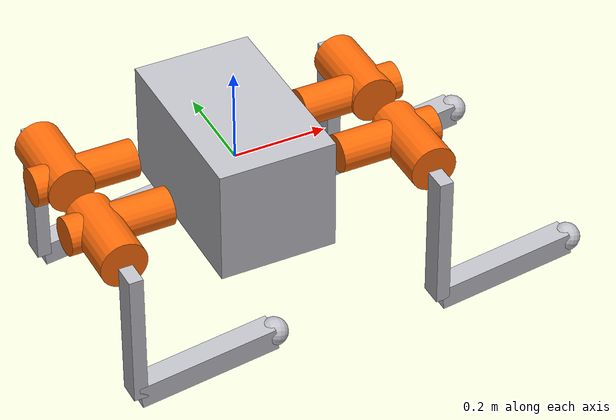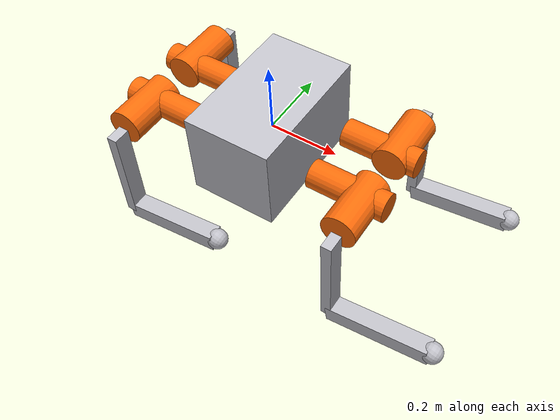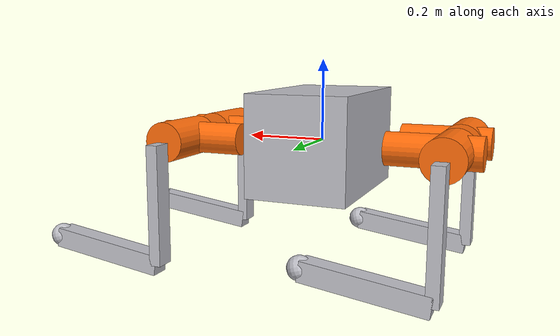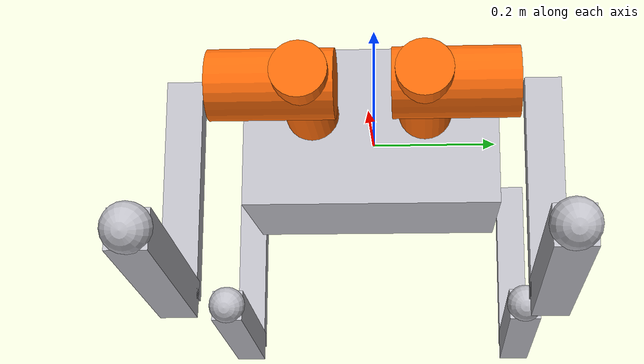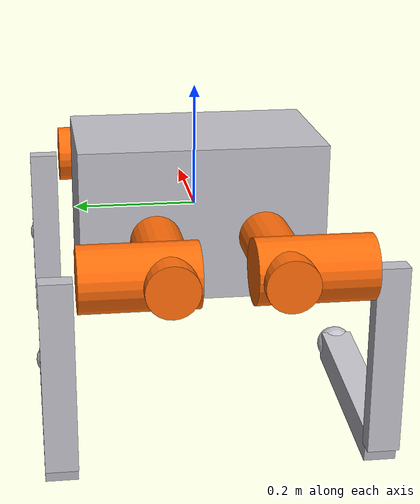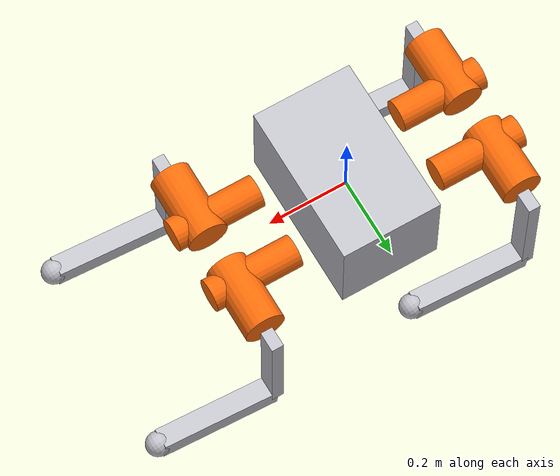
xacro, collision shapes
<?xml version="1.0"?>

<robot xmlns:xacro="http://www.ros.org/wiki/xacro" name="robot">

    <xacro:arg name="robot_type" default="alpha"/>
    <xacro:arg name="DEBUG" default="false"/>

    <xacro:include filename="$(find legged_hil_mirle_description)/urdf/common/materials.xacro"/>
    <xacro:include filename="$(find legged_hil_mirle_description)/urdf/common/leg.xacro"/>
    <xacro:include filename="$(find legged_hil_mirle_description)/urdf/common/gazebo.xacro"/>
    <xacro:include filename="$(find legged_hil_mirle_description)/urdf/common/imu.xacro"/>
    <xacro:include filename="$(find legged_hil_mirle_description)/urdf/$(arg robot_type)/const.xacro"/>

    <xacro:property name="mesh_path" value="package://legged_hil_mirle_description/meshes/$(arg robot_type)"/>

    <!-- Debug mode will hung up the robot, use "true" or "false" to switch it. -->
    <xacro:if value="$(arg DEBUG)">
        <link name="world"/>
        <joint name="base_static_joint" type="fixed" dont_collapse="true">
            <origin rpy="0 0 0" xyz="0 0 0"/>
            <parent link="world"/>
            <child link="base"/>
        </joint>
    </xacro:if>

    <link name="base">
        <visual>
            <origin rpy="0 0 0" xyz="0 0 0"/>
            <geometry>
                <mesh filename="${mesh_path}/trunk.stl" scale="1 1 1"/>
            </geometry>
            <material name="silver"/>
        </visual>
        <collision>
            <origin rpy="0 0 0" xyz="0 0 0"/>
            <geometry>
                <box size="${trunk_length} ${trunk_width} ${trunk_height}"/>
            </geometry>
        </collision>

        <inertial>
            <origin rpy="0 0 0" xyz="${trunk_com_x} ${trunk_com_y} ${trunk_com_z}"/>
            <mass value="${trunk_mass}"/>
            <inertia
                    ixx="${trunk_ixx}" ixy="${trunk_ixy}" ixz="${trunk_ixz}"
                    iyy="${trunk_iyy}" iyz="${trunk_iyz}"
                    izz="${trunk_izz}"/>
        </inertial>
    </link>

    <gazebo reference="base">
        <material>Gazebo/Silver</material>
        <kp value="1000000.0"/>
        <kd value="100.0"/>
    </gazebo>

    <xacro:IMU connected_to="base" imu_name="base_imu" xyz="0. 0. 0." rpy="0. 0. 0."/>

    <!-- legs -->
    <xacro:leg prefix="LF" mesh_path="${mesh_path}" side_x="1" side_y="1"/>
    <xacro:leg prefix="LH" mesh_path="${mesh_path}" side_x="-1" side_y="1"/>
    <xacro:leg prefix="RF" mesh_path="${mesh_path}" side_x="1" side_y="-1"/>
    <xacro:leg prefix="RH" mesh_path="${mesh_path}" side_x="-1" side_y="-1"/>

    <!-- sensor frames -->
</robot>

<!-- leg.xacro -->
<robot xmlns:xacro="http://www.ros.org/wiki/xacro">

    <xacro:include filename="$(find legged_hil_mirle_description)/urdf/common/transmission.xacro"/>

    <xacro:macro name="leg" params="prefix mesh_path side_x side_y">

        <!-- hip -->
        <joint name="${prefix}_HAA" type="revolute" >
            <!-- LF RF -->
            <xacro:if value="${(side_x == 1)}">
                <origin rpy="0 0 0" xyz="${side_x*leg_offset_x} ${side_y*leg_offset_y} 0"/>
            </xacro:if>

            <!-- LH RH -->
            <xacro:if value="${(side_x == -1)}">
                <origin rpy="0 0 ${pi}" xyz="${side_x*leg_offset_x} ${side_y*leg_offset_y} 0"/>
            </xacro:if>

            <parent link="base"/>
            <child link="${prefix}_hip"/>
            <axis xyz="1 0 0"/>
            <dynamics damping="${damping}" friction="${friction}"/>
            <limit effort="${hip_torque_max}" velocity="${hip_velocity_max}" lower="${hip_position_min}" upper="${hip_position_max}"/>
        </joint>

        <link name="${prefix}_hip">
            <!-- LF RH -->
            <xacro:if value="${(side_x == side_y)}">
                <visual>
                    <origin rpy="0 0 0" xyz="0 0 0"/>
                    <geometry>
                        <mesh filename="${mesh_path}/hip.stl" scale="1 1 1"/>
                    </geometry>
                    <material name="orange"/>
                </visual>

                <collision>
                    <origin rpy="0 ${pi/2} 0" xyz="${hip_x_offset} 0 0"/>
                    <geometry>
                        <cylinder length="${hip_length}" radius="${hip_radius}"/>
                    </geometry>
                </collision>

                <collision>
                    <origin rpy="${pi/2} 0 0" xyz="0 ${hip_shoulder_y_offset} 0"/>
                    <geometry>
                        <cylinder length="${hip_shoulder_length}" radius="${hip_shoulder_radius}"/>
                    </geometry>
                </collision>

                <inertial>
                    <origin rpy="0 0 0" xyz="${hip_com_x} ${hip_com_y} ${hip_com_z}"/>
                    <mass value="${hip_mass}"/>
                    <inertia
                            ixx="${hip_mass*hip_ixx}" ixy="${hip_mass*hip_ixy}" ixz="${hip_mass*hip_ixz}"
                            iyy="${hip_mass*hip_iyy}" iyz="${hip_mass*hip_iyz}"
                            izz="${hip_mass*hip_izz}"/>
                </inertial>
            </xacro:if>

            <!-- RF LH -->
            <xacro:if value="${(side_x != side_y)}">
                <visual>
                    <origin rpy="0 0 0" xyz="0 0 0"/>
                    <geometry>
                        <mesh filename="${mesh_path}/hip_mirror.stl" scale="1 1 1"/>
                    </geometry>
                    <material name="orange"/>
                </visual>

                <collision>
                    <origin rpy="0 ${pi/2} 0" xyz="${hip_x_offset} 0 0"/>
                    <geometry>
                        <cylinder length="${hip_length}" radius="${hip_radius}"/>
                    </geometry>
                </collision>

                <collision>
                    <origin rpy="${pi/2} 0 0" xyz="0 ${-hip_shoulder_y_offset} 0"/>
                    <geometry>
                        <cylinder length="${hip_shoulder_length}" radius="${hip_shoulder_radius}"/>
                    </geometry>
                </collision>

                <inertial>
                    <origin rpy="0 0 0" xyz="${hip_mirror_com_x} ${hip_mirror_com_y} ${hip_mirror_com_z}"/>
                    <mass value="${hip_mirror_mass}"/>
                    <inertia
                            ixx="${hip_mirror_mass*hip_mirror_ixx}" ixy="${hip_mirror_mass*hip_mirror_ixy}" ixz="${hip_mirror_mass*hip_mirror_ixz}"
                            iyy="${hip_mirror_mass*hip_mirror_iyy}" iyz="${hip_mirror_mass*hip_mirror_iyz}"
                            izz="${hip_mirror_mass*hip_mirror_izz}"/>
                </inertial>
            </xacro:if>
        </link>

        <!-- thigh -->
        <joint name="${prefix}_HFE" type="revolute" >
            <!-- LF -->
            <xacro:if value="${(side_x == 1) and (side_y == 1)}">
                <origin rpy="0 0 0" xyz="0 ${thigh_y_offset} 0"/>
            </xacro:if>

            <!-- RF -->
            <xacro:if value="${(side_x == 1) and (side_y == -1)}">
                <origin rpy="0 0 0" xyz="0 ${-thigh_y_offset} 0"/>
            </xacro:if>

            <!-- LH -->
            <xacro:if value="${(side_x == -1) and (side_y == 1)}">
                <origin rpy="0 0 ${pi}" xyz="0 ${-thigh_y_offset} 0"/>
            </xacro:if>

            <!-- RH -->
            <xacro:if value="${(side_x == -1) and (side_y == -1)}">
                <origin rpy="0 0 ${pi}" xyz="0 ${thigh_y_offset} 0"/>
            </xacro:if>

            <parent link="${prefix}_hip"/>
            <child link="${prefix}_thigh"/>
            <axis xyz="0 1 0"/>
            <dynamics damping="${damping}" friction="${friction}"/>
            <limit effort="${thigh_torque_max}" velocity="${thigh_velocity_max}" lower="${thigh_position_min}" upper="${thigh_position_max}"/>
        </joint>

        <link name="${prefix}_thigh">
            <!-- LF LH -->
            <xacro:if value="${(side_y == 1)}">
                <visual>
                    <material name="silver"/>
                    <origin rpy="0 0 0" xyz="0 0 0"/>
                    <geometry>
                        <mesh filename="${mesh_path}/thigh.stl" scale="1 1 1"/>
                    </geometry>
                </visual>

                <collision>
                    <origin rpy="0 0 0" xyz="0 0 ${-thigh_height/2}"/>
                    <geometry>
                        <box size="${thigh_width} ${thigh_length} ${thigh_height}"/>
                    </geometry>
                </collision>

                <inertial>
                    <origin rpy="0 0 0" xyz="${thigh_com_x} ${thigh_com_y} ${thigh_com_z}"/>
                    <mass value="${thigh_mass}"/>
                    <inertia
                            ixx="${thigh_mass*thigh_ixx}" ixy="${thigh_mass*thigh_ixy}" ixz="${thigh_mass*thigh_ixz}"
                            iyy="${thigh_mass*thigh_iyy}" iyz="${thigh_mass*thigh_iyz}"
                            izz="${thigh_mass*thigh_izz}"/>
                </inertial>
            </xacro:if>

            <!-- RF RH -->
            <xacro:if value="${(side_y == -1)}">
                <visual>
                    <material name="silver"/>
                    <origin rpy="0 0 0" xyz="0 0 0"/>
                    <geometry>
                        <mesh filename="${mesh_path}/thigh_mirror.stl" scale="1 1 1"/>
                    </geometry>
                </visual>

                <collision>
                    <origin rpy="0 0 0" xyz="0 0 ${-thigh_height/2}"/>
                    <geometry>
                        <box size="${thigh_width} ${thigh_length} ${thigh_height}"/>
                    </geometry>
                </collision>

                <inertial>
                    <origin rpy="0 0 0" xyz="${-thigh_com_x} ${thigh_com_y} ${thigh_com_z}"/>
                    <mass value="${thigh_mirror_mass}"/>
                    <inertia
                            ixx="${thigh_mirror_mass*thigh_mirror_ixx}" ixy="${thigh_mirror_mass*thigh_mirror_ixy}" ixz="${thigh_mirror_mass*thigh_mirror_ixz}"
                            iyy="${thigh_mirror_mass*thigh_mirror_iyy}" iyz="${thigh_mirror_mass*thigh_mirror_iyz}"
                            izz="${thigh_mirror_mass*thigh_mirror_izz}"/>
                </inertial>
            </xacro:if>
        </link>

        <!-- calf -->
        <joint name="${prefix}_KFE" type="revolute" >
            <origin rpy="0 0 0" xyz="0 0 ${calf_z_offset}"/>
            <parent link="${prefix}_thigh"/>
            <child link="${prefix}_calf"/>
            <axis xyz="0 1 0"/>
            <dynamics damping="${damping}" friction="${friction}"/>
            <limit effort="${calf_torque_max}" velocity="${calf_velocity_max}" lower="${calf_position_min}" upper="${calf_position_max}"/>
        </joint>

        <link name="${prefix}_calf">
            <visual>
                <material name="silver"/>
                <origin rpy="0 0 0" xyz="0 0 0"/>
                <geometry>
                    <mesh filename="${mesh_path}/calf.stl" scale="1 1 1"/>
                </geometry>
            </visual>

            <collision>
                <origin rpy="0 0 0" xyz="0 0 ${-calf_height/2}"/>
                <geometry>
                    <box size="${calf_width} ${calf_length} ${calf_height}"/>
                </geometry>
            </collision>

            <inertial>
                <origin rpy="0 0 0" xyz="${calf_com_x} ${calf_com_y} ${calf_com_z}"/>
                <mass value="${calf_mass}"/>
                <inertia
                        ixx="${calf_mass*calf_ixx}" ixy="${calf_mass*calf_ixy}" ixz="${calf_mass*calf_ixz}"
                        iyy="${calf_mass*calf_iyy}" iyz="${calf_mass*calf_iyz}"
                        izz="${calf_mass*calf_izz}"/>
            </inertial>
        </link>

       <!-- foot -->
        <joint name="${prefix}_foot_fixed" type="fixed" dont_collapse="true">
            <origin rpy="0 0.4372 0" xyz="0 0 -0.303541"/>
            <parent link="${prefix}_calf"/>
            <child link="${prefix}_FOOT"/>
        </joint>

        <link name="${prefix}_FOOT">
            <visual>
                <origin rpy="0 0 0" xyz="0 0 0"/>
                <material name="silver"/>
                <geometry>
                    <mesh filename="${mesh_path}/foot.stl" scale="1 1 1"/>
                </geometry>
            </visual>

            <collision>
                <origin rpy="0 0 0" xyz="0 0 0"/>
                <geometry>
                    <sphere radius="${foot_radius}"/>
                </geometry>
            </collision>
            <inertial>
                <mass value="${foot_mass}"/>
                <origin rpy="0 0 0" xyz="${foot_com_x} ${foot_com_y} ${foot_com_z}"/>
                <inertia
                        ixx="${foot_mass*foot_ixx}" ixy="${foot_mass*foot_ixy}" ixz="${foot_mass*foot_ixz}"
                        iyy="${foot_mass*foot_iyy}" iyz="${foot_mass*foot_iyz}"
                        izz="${foot_mass*foot_izz}"/>
            </inertial>
        </link>

        <gazebo reference="${prefix}_foot_fixed">
            <disableFixedJointLumping>true</disableFixedJointLumping>
        </gazebo>

        <gazebo reference="${prefix}_hip">
            <mu1>0.2</mu1>
            <mu2>0.2</mu2>
            <material>Gazebo/DarkGrey</material>
        </gazebo>
        <gazebo reference="${prefix}_thigh">
            <mu1>0.2</mu1>
            <mu2>0.2</mu2>
            <self_collide>0</self_collide>
            <material>Gazebo/DarkGrey</material>
            <kp value="1000000.0"/>
            <kd value="100.0"/>
        </gazebo>
        <gazebo reference="${prefix}_calf">
            <mu1>0.6</mu1>
            <mu2>0.6</mu2>
            <self_collide>1</self_collide>
        </gazebo>
        <gazebo reference="${prefix}_FOOT">
            <mu1>0.6</mu1>
            <mu2>0.6</mu2>
            <self_collide>1</self_collide>
            <material>Gazebo/Black</material>
            <kp value="1000000.0"/>
            <kd value="100.0"/>
        </gazebo>

        <xacro:leg_transmission prefix="${prefix}"/>
    </xacro:macro>
</robot>

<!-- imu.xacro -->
<robot xmlns:xacro="http://www.ros.org/wiki/xacro" name="imu">
    <xacro:macro name="IMU" params="connected_to imu_name xyz:='0 0 0' rpy:='0 0 0' ">
        <!-- Imu is fixed to the base link -->
        <joint name="${imu_name}_joint" type="fixed">
            <origin xyz="${xyz}" rpy="${rpy}"/>
            <parent link="${connected_to}"/>
            <child link="${imu_name}"/>
        </joint>
        <!-- Imu link -->
        <link name="${imu_name}">
            <inertial>
                <mass value="0.001"/>
                <origin rpy="0 0 0" xyz="-0.0207 -0.06215 0.038"/>
                <inertia ixx="0.0001" ixy="0" ixz="0" iyy="0.0001" iyz="0" izz="0.0001"/>
            </inertial>
            <visual>
                <origin rpy="0 0 0" xyz="0 0 0"/>
                <geometry>
                    <box size="0.045 0.0413 0.013"/>
                </geometry>
            </visual>
            <material name="orange">
                <color rgba="255 108 10 255"/>
            </material>
        </link>
        <gazebo reference="${imu_name}">
            <material name="red">
                <color rgba="0.8 0.0 0.0 1.0"/>
            </material>
        </gazebo>

        <gazebo reference="${imu_name}_joint">
            <disableFixedJointLumping>true</disableFixedJointLumping>
        </gazebo>
    </xacro:macro>
</robot>

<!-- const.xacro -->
<robot xmlns:xacro="http://www.ros.org/wiki/xacro" name="alpha_description">

    <!-- Constants for robot dimensions -->
    <xacro:property name="stick_mass" value="0.00001"/>

    <!-- simplified collision value -->
    <xacro:property name="trunk_width" value="0.4"/>
    <xacro:property name="trunk_length" value="0.25"/>
    <xacro:property name="trunk_height" value="0.25"/>

    <xacro:property name="hip_radius" value="0.04"/>
    <xacro:property name="hip_length" value="0.22"/>
    <xacro:property name="hip_x_offset" value="-0.041"/>
    <xacro:property name="hip_shoulder_radius" value="0.05"/>
    <xacro:property name="hip_shoulder_length" value="0.1765"/>
    <xacro:property name="hip_shoulder_y_offset" value="0.042786"/>
    <xacro:property name="thigh_length" value="0.05"/>
    <xacro:property name="thigh_width" value="0.03"/>
    <xacro:property name="thigh_height" value="0.3"/>
    <xacro:property name="thigh_y_offset" value="0.161036"/>
    <xacro:property name="calf_length" value="0.05"/>
    <xacro:property name="calf_width" value="0.05"/>
    <xacro:property name="calf_height" value="0.3"/>
    <xacro:property name="calf_z_offset" value="-0.3"/>
    <xacro:property name="foot_radius" value="0.03"/>

    <!-- leg offset from trunk center value -->
    <xacro:property name="leg_offset_x" value="0.336"/>
    <xacro:property name="leg_offset_y" value="0.085"/>

    <!-- joint limits -->
    <xacro:property name="damping" value="0"/>
    <xacro:property name="friction" value="0"/>
    <xacro:property name="hip_position_max" value="0.5235987756"/>
    <xacro:property name="hip_position_min" value="-0.5235987756"/>
    <xacro:property name="hip_velocity_max" value="16.53"/>
    <xacro:property name="hip_torque_max" value="120"/>
    <xacro:property name="thigh_position_max" value="2.5307"/>
    <xacro:property name="thigh_position_min" value="-2.5307"/>
    <xacro:property name="thigh_velocity_max" value="16.53"/>
    <xacro:property name="thigh_torque_max" value="120"/>
    <xacro:property name="calf_position_max" value="-0.7167"/>
    <xacro:property name="calf_position_min" value="-2.6895"/>
    <xacro:property name="calf_velocity_max" value="13.096"/>
    <xacro:property name="calf_torque_max" value="320"/>

    <!-- dynamics inertial value -->
    <!-- trunk -->
    <xacro:property name="trunk_mass" value="33.213"/>
    <xacro:property name="trunk_com_x" value="0.003643"/>
    <xacro:property name="trunk_com_y" value="0.012655"/>
    <xacro:property name="trunk_com_z" value="0.000274"/>
    <xacro:property name="trunk_ixx" value="4.15226766"/>
    <xacro:property name="trunk_ixy" value="-0.13103532"/>
    <xacro:property name="trunk_ixz" value="0.07645403"/>
    <xacro:property name="trunk_iyy" value="1.446412503"/>
    <xacro:property name="trunk_iyz" value="0.0186619"/>
    <xacro:property name="trunk_izz" value="1.631215666"/>

    <!-- hip (LF RH) -->
    <xacro:property name="hip_mass" value="7.016"/>
    <xacro:property name="hip_com_x" value="-0.026051"/>
    <xacro:property name="hip_com_y" value="0.037098"/>
    <xacro:property name="hip_com_z" value="-0.000272"/>
    <xacro:property name="hip_ixx" value="0.023801947"/>
    <xacro:property name="hip_ixy" value="0.006856072"/>
    <xacro:property name="hip_ixz" value="-0.000018512"/>
    <xacro:property name="hip_iyy" value="0.027697169"/>
    <xacro:property name="hip_iyz" value="0.000016949"/>
    <xacro:property name="hip_izz" value="0.037198371"/>

    <!-- hip mirror (RF LH) -->
    <xacro:property name="hip_mirror_mass" value="7.016"/>
    <xacro:property name="hip_mirror_com_x" value="-0.026051"/>
    <xacro:property name="hip_mirror_com_y" value="-0.037098"/>
    <xacro:property name="hip_mirror_com_z" value="-0.000272"/>
    <xacro:property name="hip_mirror_ixx" value="0.023801947"/>
    <xacro:property name="hip_mirror_ixy" value="-0.006856072"/>
    <xacro:property name="hip_mirror_ixz" value="-0.000018512"/>
    <xacro:property name="hip_mirror_iyy" value="0.027697169"/>
    <xacro:property name="hip_mirror_iyz" value="-0.000016949"/>
    <xacro:property name="hip_mirror_izz" value="0.037198371"/>

    <!-- thigh (LF LH) -->
    <xacro:property name="thigh_mass" value="2.066"/>
    <xacro:property name="thigh_com_x" value="-0.014157"/>
    <xacro:property name="thigh_com_y" value="-0.002508"/>
    <xacro:property name="thigh_com_z" value="-0.079035"/>
    <xacro:property name="thigh_ixx" value="0.026398942"/>
    <xacro:property name="thigh_ixy" value="-0.000075965"/>
    <xacro:property name="thigh_ixz" value="-0.002051503"/>
    <xacro:property name="thigh_iyy" value="0.028897673"/>
    <xacro:property name="thigh_iyz" value="-0.00041227"/>
    <xacro:property name="thigh_izz" value="0.003980106"/>

    <!--thigh mirror (RF RH) -->
    <xacro:property name="thigh_mirror_mass" value="2.066"/>
    <xacro:property name="thigh_mirror_com_x" value="-0.01374"/>
    <xacro:property name="thigh_mirror_com_y" value="0.002508"/>
    <xacro:property name="thigh_mirror_com_z" value="-0.079035"/>
    <xacro:property name="thigh_mirror_ixx" value="0.026398942"/>
    <xacro:property name="thigh_mirror_ixy" value="-0.000075965"/>
    <xacro:property name="thigh_mirror_ixz" value="-0.002051503"/>
    <xacro:property name="thigh_mirror_iyy" value="0.028897673"/>
    <xacro:property name="thigh_mirror_iyz" value="-0.00041227"/>
    <xacro:property name="thigh_mirror_izz" value="0.003980106"/>

    <!-- calf-->
    <xacro:property name="calf_mass" value="0.944"/>
    <xacro:property name="calf_com_x" value="0.005417"/>
    <xacro:property name="calf_com_y" value="0.0"/>
    <xacro:property name="calf_com_z" value="-0.134062"/>
    <xacro:property name="calf_ixx" value="0.01572664"/>
    <xacro:property name="calf_ixy" value="-0.000000002"/>
    <xacro:property name="calf_ixz" value="0.000440353"/>
    <xacro:property name="calf_iyy" value="0.015911223"/>
    <xacro:property name="calf_iyz" value="0.000000049"/>
    <xacro:property name="calf_izz" value="0.000398997"/>

    <!-- foot -->
    <xacro:property name="foot_mass" value="0.114"/>
    <xacro:property name="foot_com_x" value="0.0"/>
    <xacro:property name="foot_com_y" value="0.0"/>
    <xacro:property name="foot_com_z" value="-0.011522"/>
    <xacro:property name="foot_ixx" value="0.000030711"/>
    <xacro:property name="foot_ixy" value="0.0"/>
    <xacro:property name="foot_ixz" value="0.0"/>
    <xacro:property name="foot_iyy" value="0.00004633"/>
    <xacro:property name="foot_iyz" value="0.0"/>
    <xacro:property name="foot_izz" value="0.00005264"/>

</robot>
